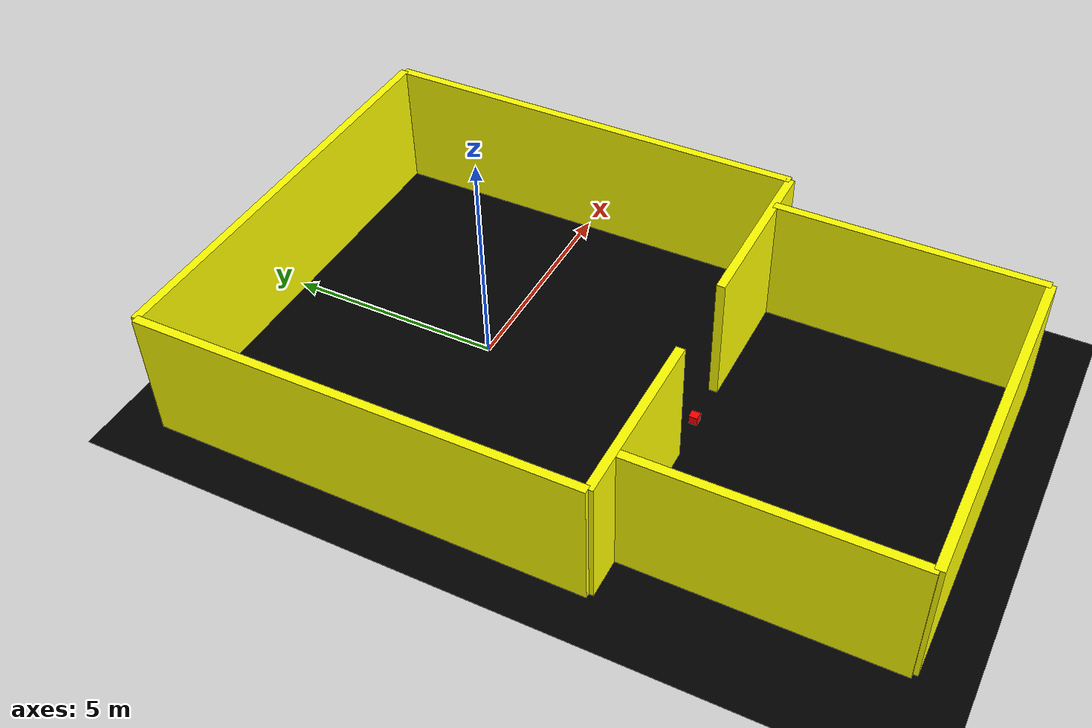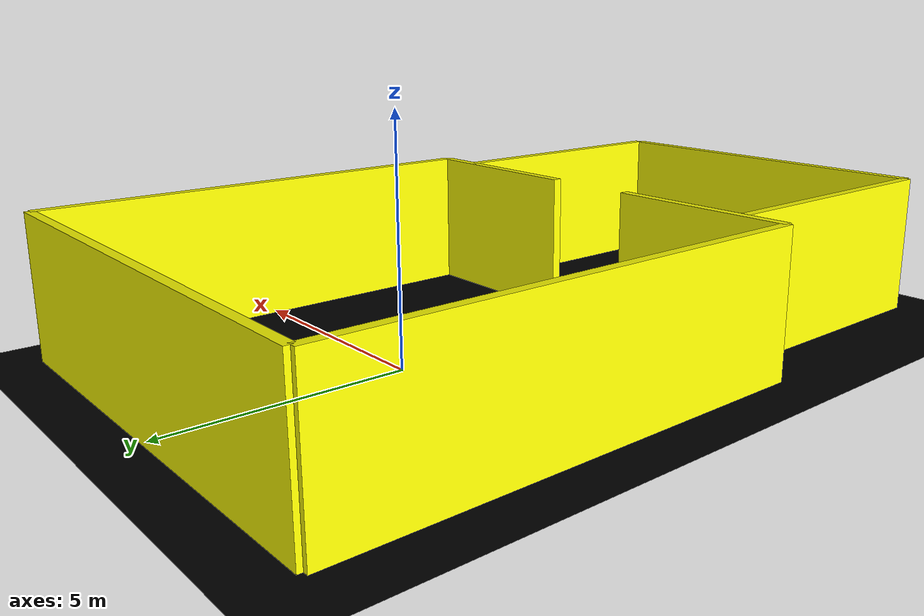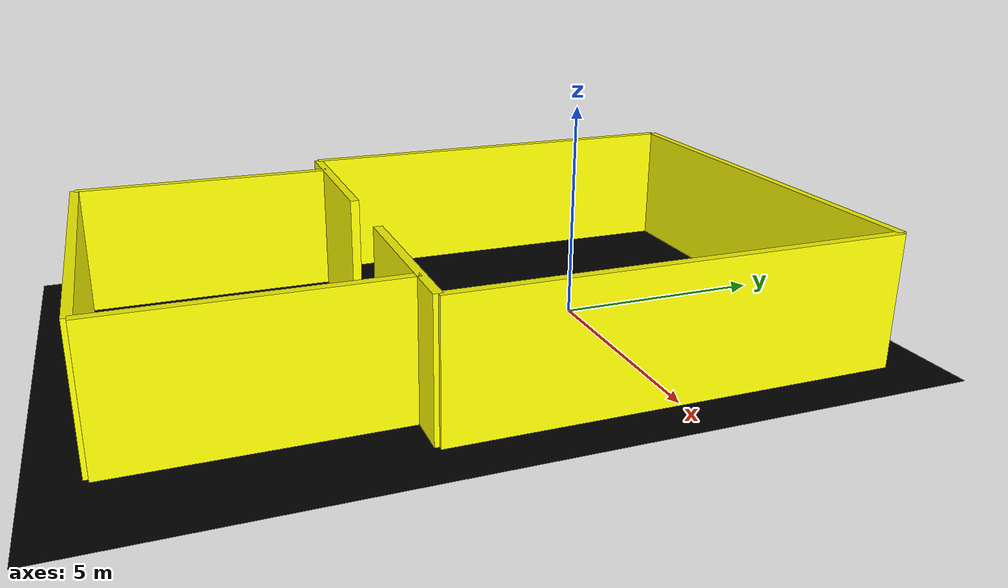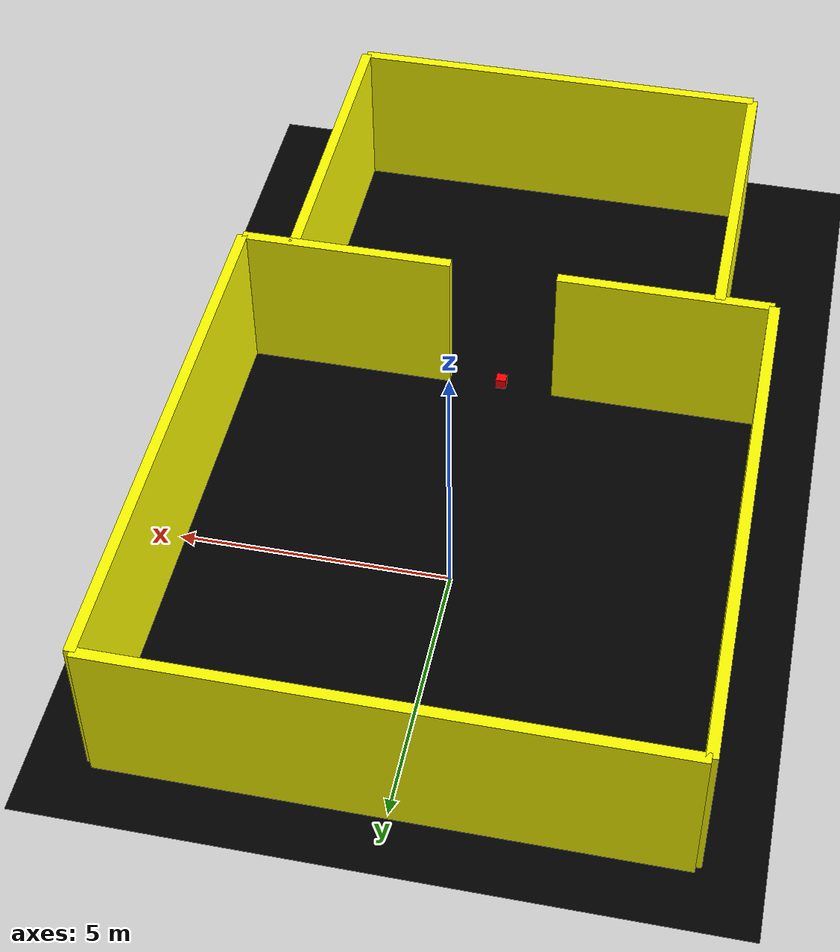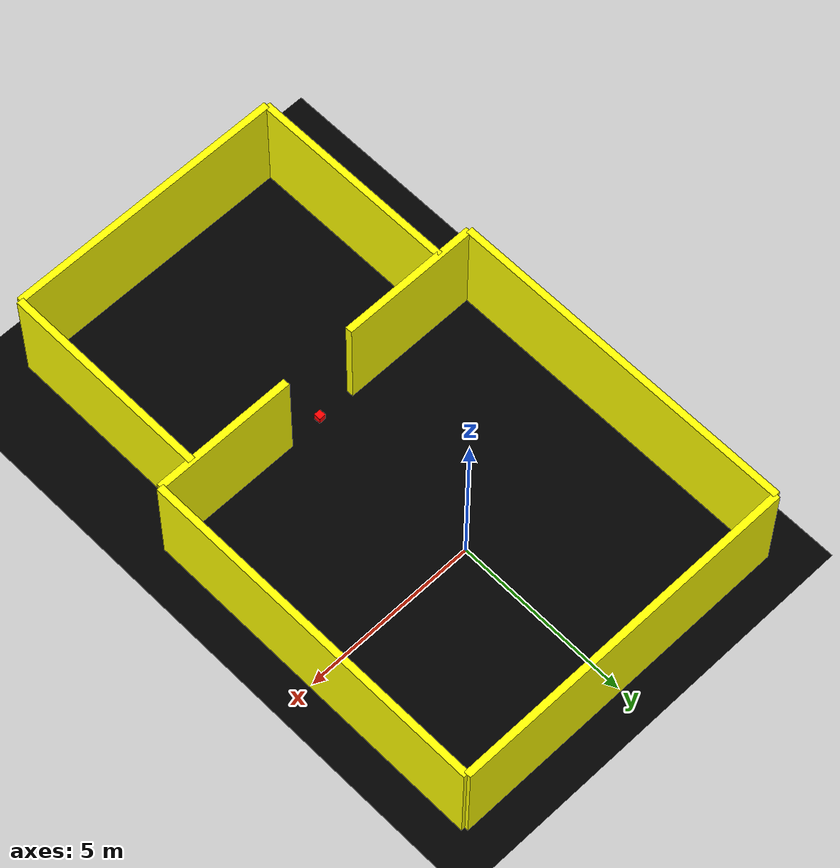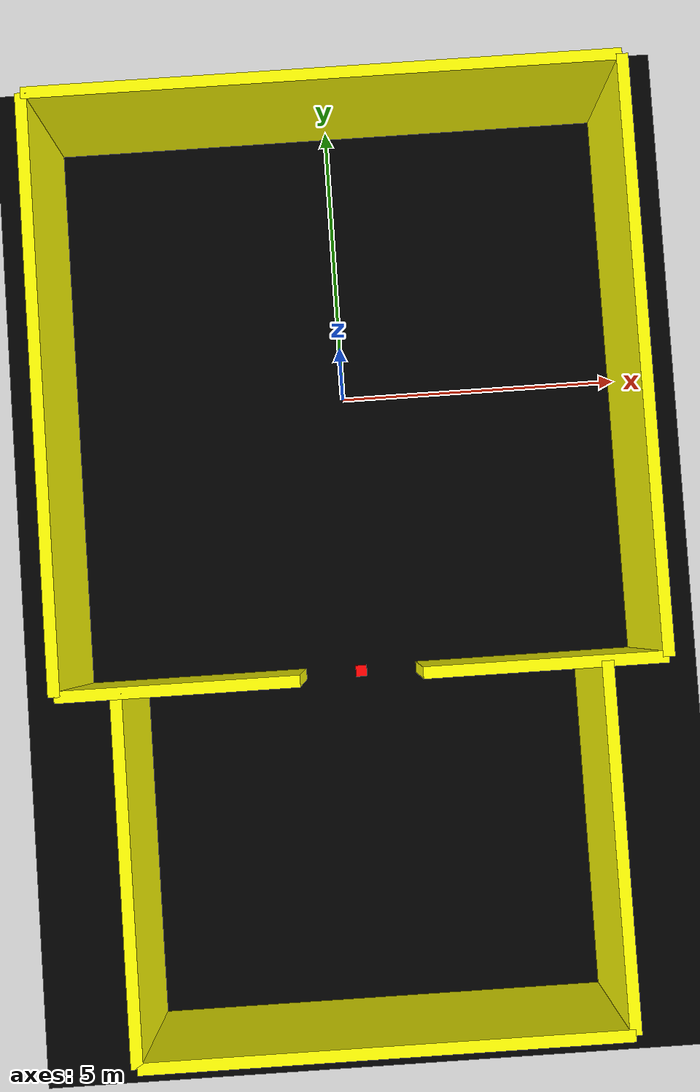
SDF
<?xml version="1.0" ?>
<sdf version="1.9">
  <world name="demo">
    <!-- 启用物理引擎 -->
    <plugin filename="gz-sim-physics-system" name="gz::sim::systems::Physics"></plugin>
    <plugin filename="gz-sim-user-commands-system" name="gz::sim::systems::UserCommands"></plugin>
    <!-- 启用场景广播 -->
    <plugin filename="gz-sim-scene-broadcaster-system" name="gz::sim::systems::SceneBroadcaster"></plugin>
    <!-- 启用传感器系统并指定渲染引擎 -->
    <plugin filename="gz-sim-sensors-system" name="gz::sim::systems::Sensors">
      <render_engine>ogre2</render_engine>
    </plugin>
    <plugin filename="gz-sim-imu-system" name="gz::sim::systems::Imu"></plugin>

    <!-- 添加光源：点光源，位于房屋上方，白色光 -->
    <light type="point" name="main_light">
      <pose>0 0 5 0 0 0</pose> <!-- 位于z=5m，房屋上方 -->
      <diffuse>1.0 1.0 1.0 1</diffuse> <!-- 白色光 -->
      <specular>1.0 1.0 1.0 1</specular>
      <attenuation>
        <range>20</range> <!-- 光照范围20米 -->
        <linear>0.1</linear>
        <constant>0.9</constant>
        <quadratic>0.01</quadratic>
      </attenuation>
      <cast_shadows>true</cast_shadows>
    </light>

    <!-- 地面平面：纯黑色 -->
    <model name="ground_plane">
      <static>true</static>
      <link name="link">
        <collision name="collision">
          <geometry>
            <plane>
              <normal>0 0 1</normal>
              <size>100 100</size>
            </plane>
          </geometry>
        </collision>
        <visual name="visual">
          <geometry>
            <plane>
              <normal>0 0 1</normal>
              <size>100 100</size>
            </plane>
          </geometry>
          <material>
            <!-- 纯黑色：RGB = (0.0, 0.0, 0.0) -->
            <ambient>0.0 0.0 0.0 1</ambient>
            <diffuse>0.0 0.0 0.0 1</diffuse>
            <specular>0.0 0.0 0.0 1</specular>
          </material>
        </visual>
      </link>
    </model>

    <!-- 房子模型：两个连通的封闭房间，无房顶 -->
    <model name="house">
      <static>true</static>
      <pose>0 0 0 0 0 0</pose>
      <!-- 房间1：矩形区域（10m x 10m），黄色墙壁，高度3m -->
      <!-- 房间1前墙 -->
      <link name="room1_front_wall">
        <pose>0 5 1.5 0 0 0</pose>
        <collision name="collision">
          <geometry>
            <box>
              <size>10 0.2 3</size>
            </box>
          </geometry>
        </collision>
        <visual name="visual">
          <geometry>
            <box>
              <size>10 0.2 3</size>
            </box>
          </geometry>
          <material>
            <!-- 黄色：RGB = (1.0, 1.0, 0.0) -->
            <ambient>1.0 1.0 0.0 1</ambient>
            <diffuse>1.0 1.0 0.0 1</diffuse>
            <specular>1.0 1.0 0.0 1</specular>
          </material>
        </visual>
      </link>
      <!-- 房间1后墙（带2米宽门洞，连接房间2） -->
      <link name="room1_back_wall">
        <pose>0 -5 1.5 0 0 0</pose>
        <collision name="collision_left">
          <pose>-3 0 0 0 0 0</pose> <!-- 左墙：x从-5到-1 -->
          <geometry>
            <box>
              <size>4 0.2 3</size>
            </box>
          </geometry>
        </collision>
        <collision name="collision_right">
          <pose>3 0 0 0 0 0</pose> <!-- 右墙：x从1到5 -->
          <geometry>
            <box>
              <size>4 0.2 3</size>
            </box>
          </geometry>
        </collision>
        <visual name="visual_left">
          <pose>-3 0 0 0 0 0</pose>
          <geometry>
            <box>
              <size>4 0.2 3</size>
            </box>
          </geometry>
          <material>
            <ambient>1.0 1.0 0.0 1</ambient>
            <diffuse>1.0 1.0 0.0 1</diffuse>
            <specular>1.0 1.0 0.0 1</specular>
          </material>
        </visual>
        <visual name="visual_right">
          <pose>3 0 0 0 0 0</pose>
          <geometry>
            <box>
              <size>4 0.2 3</size>
            </box>
          </geometry>
          <material>
            <ambient>1.0 1.0 0.0 1</ambient>
            <diffuse>1.0 1.0 0.0 1</diffuse>
            <specular>1.0 1.0 0.0 1</specular>
          </material>
        </visual>
      </link>
      <!-- 房间1左墙 -->
      <link name="room1_left_wall">
        <pose>-5 0 1.5 0 0 1.5708</pose>
        <collision name="collision">
          <geometry>
            <box>
              <size>10 0.2 3</size>
            </box>
          </geometry>
        </collision>
        <visual name="visual">
          <geometry>
            <box>
              <size>10 0.2 3</size>
            </box>
          </geometry>
          <material>
            <ambient>1.0 1.0 0.0 1</ambient>
            <diffuse>1.0 1.0 0.0 1</diffuse>
            <specular>1.0 1.0 0.0 1</specular>
          </material>
        </visual>
      </link>
      <!-- 房间1右墙 -->
      <link name="room1_right_wall">
        <pose>5 0 1.5 0 0 1.5708</pose>
        <collision name="collision">
          <geometry>
            <box>
              <size>10 0.2 3</size>
            </box>
          </geometry>
        </collision>
        <visual name="visual">
          <geometry>
            <box>
              <size>10 0.2 3</size>
            </box>
          </geometry>
          <material>
            <ambient>1.0 1.0 0.0 1</ambient>
            <diffuse>1.0 1.0 0.0 1</diffuse>
            <specular>1.0 1.0 0.0 1</specular>
          </material>
        </visual>
      </link>

      <!-- 房间2：矩形区域（8m x 6m），黄色墙壁，高度3m，位于房间1后方 -->
      <!-- 房间2后墙 -->
      <link name="room2_back_wall">
        <pose>0 -11 1.5 0 0 0</pose>
        <collision name="collision">
          <geometry>
            <box>
              <size>8 0.2 3</size>
            </box>
          </geometry>
        </collision>
        <visual name="visual">
          <geometry>
            <box>
              <size>8 0.2 3</size>
            </box>
          </geometry>
          <material>
            <ambient>1.0 1.0 0.0 1</ambient>
            <diffuse>1.0 1.0 0.0 1</diffuse>
            <specular>1.0 1.0 0.0 1</specular>
          </material>
        </visual>
      </link>
      <!-- 房间2左墙 -->
      <link name="room2_left_wall">
        <pose>-4 -8 1.5 0 0 1.5708</pose>
        <collision name="collision">
          <geometry>
            <box>
              <size>6 0.2 3</size>
            </box>
          </geometry>
        </collision>
        <visual name="visual">
          <geometry>
            <box>
              <size>6 0.2 3</size>
            </box>
          </geometry>
          <material>
            <ambient>1.0 1.0 0.0 1</ambient>
            <diffuse>1.0 1.0 0.0 1</diffuse>
            <specular>1.0 1.0 0.0 1</specular>
          </material>
        </visual>
      </link>
      <!-- 房间2右墙 -->
      <link name="room2_right_wall">
        <pose>4 -8 1.5 0 0 1.5708</pose>
        <collision name="collision">
          <geometry>
            <box>
              <size>6 0.2 3</size>
            </box>
          </geometry>
        </collision>
        <visual name="visual">
          <geometry>
            <box>
              <size>6 0.2 3</size>
            </box>
          </geometry>
          <material>
            <ambient>1.0 1.0 0.0 1</ambient>
            <diffuse>1.0 1.0 0.0 1</diffuse>
            <specular>1.0 1.0 0.0 1</specular>
          </material>
        </visual>
      </link>

      <!-- 门洞标记：红色小立方体，位于门洞中心，便于视觉确认 -->
      <link name="door_marker">
        <pose>0 -5 0.1 0 0 0</pose>
        <visual name="visual">
          <geometry>
            <box>
              <size>0.2 0.2 0.2</size>
            </box>
          </geometry>
          <material>
            <!-- 红色：RGB = (1.0, 0.0, 0.0) -->
            <ambient>1.0 0.0 0.0 1</ambient>
            <diffuse>1.0 0.0 0.0 1</diffuse>
            <specular>1.0 0.0 0.0 1</specular>
          </material>
        </visual>
      </link>
    </model>
  </world>
</sdf>
